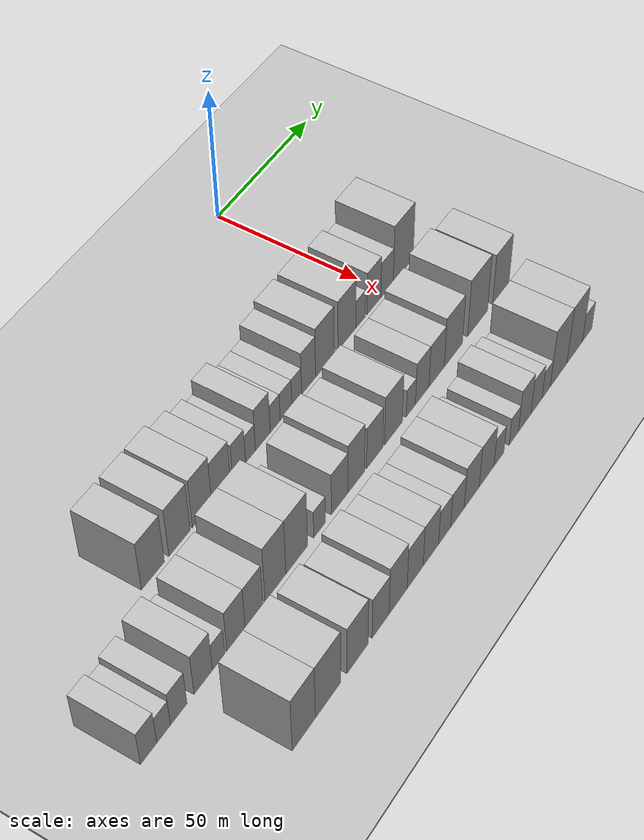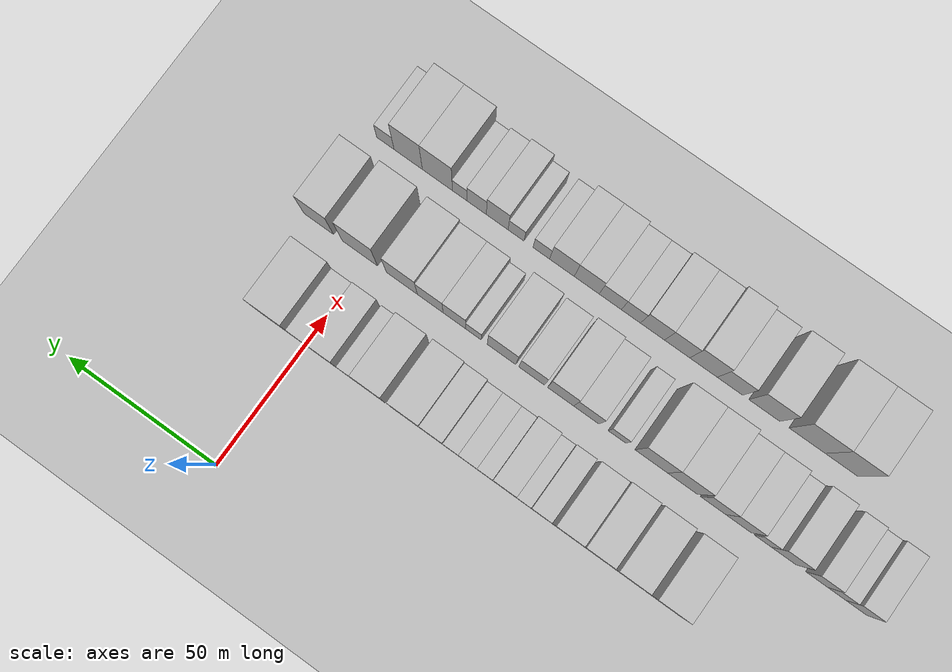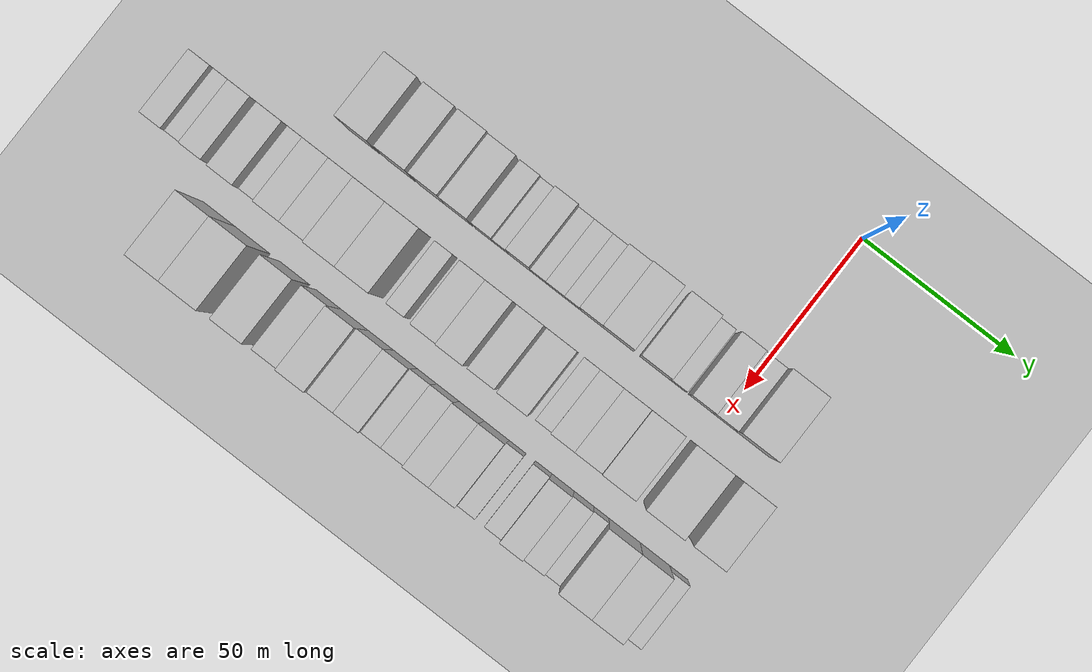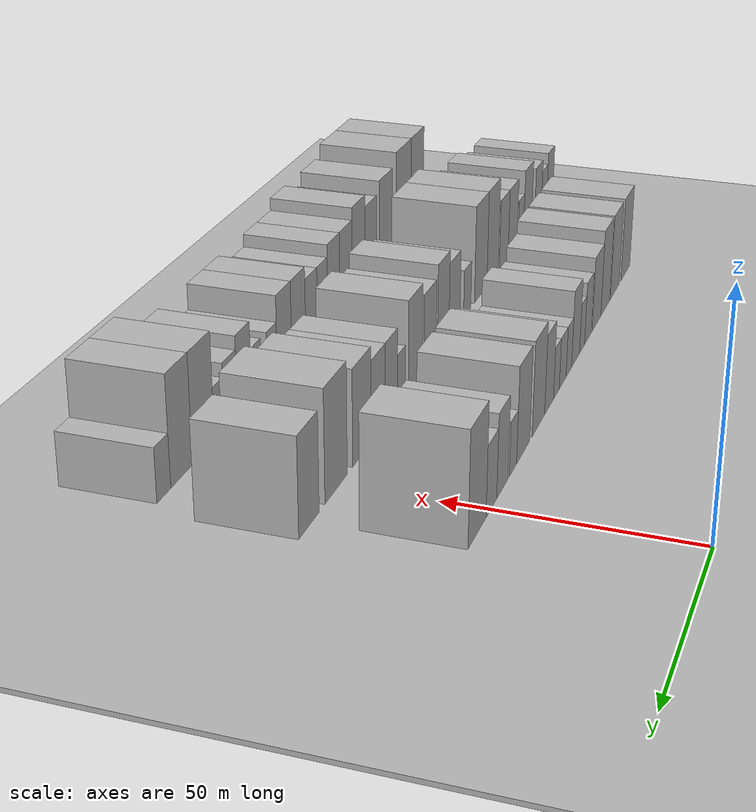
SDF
<sdf version="1.6">
 <world name="default">
  <include><name>ground_plane_1</name><uri>model://HANNAS_ground_plane</uri></include>
  <include>
   <name>ground_plane_2</name>
   <uri>model://HANNAS_ground_plane</uri>
   <pose>100 0 0  0 0 0</pose>
  </include>
  <model name="building_20">
   <static>1</static>
   <pose>50.0000 -117.7029 0 0.000000 0.000000 0.000000</pose>
   <link name="link">
    <pose>0 0 10.50 0 0 0</pose>
    <collision name="collision"><geometry><box><size>20.0000 10.2209 21.0000</size></box></geometry></collision>
    <visual name="visual">
     <cast_shadows>0</cast_shadows>
     <geometry><box><size>20.0000 10.2209 21.0000</size></box></geometry>
     <material>
      <script>
       <uri>model://HANNAS_wall/materials/scripts</uri>
       <uri>model://HANNAS_wall/materials/textures</uri>
       <name>vrc/HANNAS_wall</name>
      </script>
     </material>
    </visual>
   </link>
  </model>
  <model name="building_21">
   <static>1</static>
   <pose>50.0000 -105.7209 0 0.000000 0.000000 0.000000</pose>
   <link name="link">
    <pose>0 0 10.50 0 0 0</pose>
    <collision name="collision"><geometry><box><size>20.0000 9.7430 21.0000</size></box></geometry></collision>
    <visual name="visual">
     <cast_shadows>0</cast_shadows>
     <geometry><box><size>20.0000 9.7430 21.0000</size></box></geometry>
     <material>
      <script>
       <uri>model://HANNAS_wall/materials/scripts</uri>
       <uri>model://HANNAS_wall/materials/textures</uri>
       <name>vrc/HANNAS_wall</name>
      </script>
     </material>
    </visual>
   </link>
  </model>
  <model name="building_22">
   <static>1</static>
   <pose>50.0000 -95.3315 0 0.000000 0.000000 0.000000</pose>
   <link name="link">
    <pose>0 0 10.50 0 0 0</pose>
    <collision name="collision"><geometry><box><size>20.0000 9.0359 21.0000</size></box></geometry></collision>
    <visual name="visual">
     <cast_shadows>0</cast_shadows>
     <geometry><box><size>20.0000 9.0359 21.0000</size></box></geometry>
     <material>
      <script>
       <uri>model://HANNAS_wall/materials/scripts</uri>
       <uri>model://HANNAS_wall/materials/textures</uri>
       <name>vrc/HANNAS_wall</name>
      </script>
     </material>
    </visual>
   </link>
  </model>
  <model name="building_23">
   <static>1</static>
   <pose>50.0000 -86.3866 0 0.000000 0.000000 0.000000</pose>
   <link name="link">
    <pose>0 0 9.00 0 0 0</pose>
    <collision name="collision"><geometry><box><size>20.0000 8.8540 18.0000</size></box></geometry></collision>
    <visual name="visual">
     <cast_shadows>0</cast_shadows>
     <geometry><box><size>20.0000 8.8540 18.0000</size></box></geometry>
     <material>
      <script>
       <uri>model://HANNAS_wall/materials/scripts</uri>
       <uri>model://HANNAS_wall/materials/textures</uri>
       <name>vrc/HANNAS_wall</name>
      </script>
     </material>
    </visual>
   </link>
  </model>
  <model name="building_24">
   <static>1</static>
   <pose>50.0000 -77.7692 0 0.000000 0.000000 0.000000</pose>
   <link name="link">
    <pose>0 0 7.50 0 0 0</pose>
    <collision name="collision"><geometry><box><size>20.0000 6.3808 15.0000</size></box></geometry></collision>
    <visual name="visual">
     <cast_shadows>0</cast_shadows>
     <geometry><box><size>20.0000 6.3808 15.0000</size></box></geometry>
     <material>
      <script>
       <uri>model://HANNAS_wall/materials/scripts</uri>
       <uri>model://HANNAS_wall/materials/textures</uri>
       <name>vrc/HANNAS_wall</name>
      </script>
     </material>
    </visual>
   </link>
  </model>
  <model name="building_25">
   <static>1</static>
   <pose>50.0000 -72.1484 0 0.000000 0.000000 0.000000</pose>
   <link name="link">
    <pose>0 0 6.00 0 0 0</pose>
    <collision name="collision"><geometry><box><size>20.0000 4.8608 12.0000</size></box></geometry></collision>
    <visual name="visual">
     <cast_shadows>0</cast_shadows>
     <geometry><box><size>20.0000 4.8608 12.0000</size></box></geometry>
     <material>
      <script>
       <uri>model://HANNAS_wall/materials/scripts</uri>
       <uri>model://HANNAS_wall/materials/textures</uri>
       <name>vrc/HANNAS_wall</name>
      </script>
     </material>
    </visual>
   </link>
  </model>
  <model name="building_26">
   <static>1</static>
   <pose>50.0000 -66.0389 0 0.000000 0.000000 0.000000</pose>
   <link name="link">
    <pose>0 0 9.00 0 0 0</pose>
    <collision name="collision"><geometry><box><size>20.0000 7.3583 18.0000</size></box></geometry></collision>
    <visual name="visual">
     <cast_shadows>0</cast_shadows>
     <geometry><box><size>20.0000 7.3583 18.0000</size></box></geometry>
     <material>
      <script>
       <uri>model://HANNAS_wall/materials/scripts</uri>
       <uri>model://HANNAS_wall/materials/textures</uri>
       <name>vrc/HANNAS_wall</name>
      </script>
     </material>
    </visual>
   </link>
  </model>
  <model name="building_27">
   <static>1</static>
   <pose>50.0000 -59.8651 0 0.000000 0.000000 0.000000</pose>
   <link name="link">
    <pose>0 0 6.00 0 0 0</pose>
    <collision name="collision"><geometry><box><size>20.0000 4.9893 12.0000</size></box></geometry></collision>
    <visual name="visual">
     <cast_shadows>0</cast_shadows>
     <geometry><box><size>20.0000 4.9893 12.0000</size></box></geometry>
     <material>
      <script>
       <uri>model://HANNAS_wall/materials/scripts</uri>
       <uri>model://HANNAS_wall/materials/textures</uri>
       <name>vrc/HANNAS_wall</name>
      </script>
     </material>
    </visual>
   </link>
  </model>
  <model name="building_28">
   <static>1</static>
   <pose>50.0000 -54.3744 0 0.000000 0.000000 0.000000</pose>
   <link name="link">
    <pose>0 0 6.00 0 0 0</pose>
    <collision name="collision"><geometry><box><size>20.0000 5.9921 12.0000</size></box></geometry></collision>
    <visual name="visual">
     <cast_shadows>0</cast_shadows>
     <geometry><box><size>20.0000 5.9921 12.0000</size></box></geometry>
     <material>
      <script>
       <uri>model://HANNAS_wall/materials/scripts</uri>
       <uri>model://HANNAS_wall/materials/textures</uri>
       <name>vrc/HANNAS_wall</name>
      </script>
     </material>
    </visual>
   </link>
  </model>
  <model name="building_29">
   <static>1</static>
   <pose>50.0000 -48.8814 0 0.000000 0.000000 0.000000</pose>
   <link name="link">
    <pose>0 0 6.00 0 0 0</pose>
    <collision name="collision"><geometry><box><size>20.0000 4.9938 12.0000</size></box></geometry></collision>
    <visual name="visual">
     <cast_shadows>0</cast_shadows>
     <geometry><box><size>20.0000 4.9938 12.0000</size></box></geometry>
     <material>
      <script>
       <uri>model://HANNAS_wall/materials/scripts</uri>
       <uri>model://HANNAS_wall/materials/textures</uri>
       <name>vrc/HANNAS_wall</name>
      </script>
     </material>
    </visual>
   </link>
  </model>
  <model name="building_30">
   <static>1</static>
   <pose>50.0000 -42.7141 0 0.000000 0.000000 0.000000</pose>
   <link name="link">
    <pose>0 0 9.00 0 0 0</pose>
    <collision name="collision"><geometry><box><size>20.0000 7.3408 18.0000</size></box></geometry></collision>
    <visual name="visual">
     <cast_shadows>0</cast_shadows>
     <geometry><box><size>20.0000 7.3408 18.0000</size></box></geometry>
     <material>
      <script>
       <uri>model://HANNAS_wall/materials/scripts</uri>
       <uri>model://HANNAS_wall/materials/textures</uri>
       <name>vrc/HANNAS_wall</name>
      </script>
     </material>
    </visual>
   </link>
  </model>
  <model name="building_31">
   <static>1</static>
   <pose>50.0000 -34.0689 0 0.000000 0.000000 0.000000</pose>
   <link name="link">
    <pose>0 0 10.50 0 0 0</pose>
    <collision name="collision"><geometry><box><size>20.0000 9.9496 21.0000</size></box></geometry></collision>
    <visual name="visual">
     <cast_shadows>0</cast_shadows>
     <geometry><box><size>20.0000 9.9496 21.0000</size></box></geometry>
     <material>
      <script>
       <uri>model://HANNAS_wall/materials/scripts</uri>
       <uri>model://HANNAS_wall/materials/textures</uri>
       <name>vrc/HANNAS_wall</name>
      </script>
     </material>
    </visual>
   </link>
  </model>
  <model name="building_32">
   <static>1</static>
   <pose>50.0000 -22.2317 0 0.000000 0.000000 0.000000</pose>
   <link name="link">
    <pose>0 0 10.50 0 0 0</pose>
    <collision name="collision"><geometry><box><size>20.0000 9.7248 21.0000</size></box></geometry></collision>
    <visual name="visual">
     <cast_shadows>0</cast_shadows>
     <geometry><box><size>20.0000 9.7248 21.0000</size></box></geometry>
     <material>
      <script>
       <uri>model://HANNAS_wall/materials/scripts</uri>
       <uri>model://HANNAS_wall/materials/textures</uri>
       <name>vrc/HANNAS_wall</name>
      </script>
     </material>
    </visual>
   </link>
  </model>
  <model name="building_33">
   <static>1</static>
   <pose>50.0000 -14.7225 0 0.000000 0.000000 0.000000</pose>
   <link name="link">
    <pose>0 0 6.00 0 0 0</pose>
    <collision name="collision"><geometry><box><size>20.0000 5.2937 12.0000</size></box></geometry></collision>
    <visual name="visual">
     <cast_shadows>0</cast_shadows>
     <geometry><box><size>20.0000 5.2937 12.0000</size></box></geometry>
     <material>
      <script>
       <uri>model://HANNAS_wall/materials/scripts</uri>
       <uri>model://HANNAS_wall/materials/textures</uri>
       <name>vrc/HANNAS_wall</name>
      </script>
     </material>
    </visual>
   </link>
  </model>
  <model name="building_34">
   <static>1</static>
   <pose>50.0000 -7.1864 0 0.000000 0.000000 0.000000</pose>
   <link name="link">
    <pose>0 0 9.00 0 0 0</pose>
    <collision name="collision"><geometry><box><size>20.0000 7.7785 18.0000</size></box></geometry></collision>
    <visual name="visual">
     <cast_shadows>0</cast_shadows>
     <geometry><box><size>20.0000 7.7785 18.0000</size></box></geometry>
     <material>
      <script>
       <uri>model://HANNAS_wall/materials/scripts</uri>
       <uri>model://HANNAS_wall/materials/textures</uri>
       <name>vrc/HANNAS_wall</name>
      </script>
     </material>
    </visual>
   </link>
  </model>
  <model name="building_35">
   <static>1</static>
   <pose>50.0000 0.2506 0 0.000000 0.000000 0.000000</pose>
   <link name="link">
    <pose>0 0 7.50 0 0 0</pose>
    <collision name="collision"><geometry><box><size>20.0000 7.0955 15.0000</size></box></geometry></collision>
    <visual name="visual">
     <cast_shadows>0</cast_shadows>
     <geometry><box><size>20.0000 7.0955 15.0000</size></box></geometry>
     <material>
      <script>
       <uri>model://HANNAS_wall/materials/scripts</uri>
       <uri>model://HANNAS_wall/materials/textures</uri>
       <name>vrc/HANNAS_wall</name>
      </script>
     </material>
    </visual>
   </link>
  </model>
  <model name="building_36">
   <static>1</static>
   <pose>50.0000 9.5792 0 0.000000 0.000000 0.000000</pose>
   <link name="link">
    <pose>0 0 12.00 0 0 0</pose>
    <collision name="collision"><geometry><box><size>20.0000 11.5617 24.0000</size></box></geometry></collision>
    <visual name="visual">
     <cast_shadows>0</cast_shadows>
     <geometry><box><size>20.0000 11.5617 24.0000</size></box></geometry>
     <material>
      <script>
       <uri>model://HANNAS_wall/materials/scripts</uri>
       <uri>model://HANNAS_wall/materials/textures</uri>
       <name>vrc/HANNAS_wall</name>
      </script>
     </material>
    </visual>
   </link>
  </model>
  <model name="building_96">
   <static>1</static>
   <pose>79.0000 -159.9873 0 0.000000 0.000000 0.000000</pose>
   <link name="link">
    <pose>0 0 7.50 0 0 0</pose>
    <collision name="collision"><geometry><box><size>20.0000 6.7706 15.0000</size></box></geometry></collision>
    <visual name="visual">
     <cast_shadows>0</cast_shadows>
     <geometry><box><size>20.0000 6.7706 15.0000</size></box></geometry>
     <material>
      <script>
       <uri>model://HANNAS_wall/materials/scripts</uri>
       <uri>model://HANNAS_wall/materials/textures</uri>
       <name>vrc/HANNAS_wall</name>
      </script>
     </material>
    </visual>
   </link>
  </model>
  <model name="building_97">
   <static>1</static>
   <pose>79.0000 -153.7625 0 0.000000 0.000000 0.000000</pose>
   <link name="link">
    <pose>0 0 6.00 0 0 0</pose>
    <collision name="collision"><geometry><box><size>20.0000 5.6791 12.0000</size></box></geometry></collision>
    <visual name="visual">
     <cast_shadows>0</cast_shadows>
     <geometry><box><size>20.0000 5.6791 12.0000</size></box></geometry>
     <material>
      <script>
       <uri>model://HANNAS_wall/materials/scripts</uri>
       <uri>model://HANNAS_wall/materials/textures</uri>
       <name>vrc/HANNAS_wall</name>
      </script>
     </material>
    </visual>
   </link>
  </model>
  <model name="building_98">
   <static>1</static>
   <pose>79.0000 -147.4094 0 0.000000 0.000000 0.000000</pose>
   <link name="link">
    <pose>0 0 7.50 0 0 0</pose>
    <collision name="collision"><geometry><box><size>20.0000 7.0272 15.0000</size></box></geometry></collision>
    <visual name="visual">
     <cast_shadows>0</cast_shadows>
     <geometry><box><size>20.0000 7.0272 15.0000</size></box></geometry>
     <material>
      <script>
       <uri>model://HANNAS_wall/materials/scripts</uri>
       <uri>model://HANNAS_wall/materials/textures</uri>
       <name>vrc/HANNAS_wall</name>
      </script>
     </material>
    </visual>
   </link>
  </model>
  <model name="building_99">
   <static>1</static>
   <pose>79.0000 -136.8767 0 0.000000 0.000000 0.000000</pose>
   <link name="link">
    <pose>0 0 9.00 0 0 0</pose>
    <collision name="collision"><geometry><box><size>20.0000 8.0382 18.0000</size></box></geometry></collision>
    <visual name="visual">
     <cast_shadows>0</cast_shadows>
     <geometry><box><size>20.0000 8.0382 18.0000</size></box></geometry>
     <material>
      <script>
       <uri>model://HANNAS_wall/materials/scripts</uri>
       <uri>model://HANNAS_wall/materials/textures</uri>
       <name>vrc/HANNAS_wall</name>
      </script>
     </material>
    </visual>
   </link>
  </model>
  <model name="building_100">
   <static>1</static>
   <pose>79.0000 -130.1507 0 0.000000 0.000000 0.000000</pose>
   <link name="link">
    <pose>0 0 6.00 0 0 0</pose>
    <collision name="collision"><geometry><box><size>20.0000 5.4139 12.0000</size></box></geometry></collision>
    <visual name="visual">
     <cast_shadows>0</cast_shadows>
     <geometry><box><size>20.0000 5.4139 12.0000</size></box></geometry>
     <material>
      <script>
       <uri>model://HANNAS_wall/materials/scripts</uri>
       <uri>model://HANNAS_wall/materials/textures</uri>
       <name>vrc/HANNAS_wall</name>
      </script>
     </material>
    </visual>
   </link>
  </model>
  <model name="building_101">
   <static>1</static>
   <pose>79.0000 -122.3337 0 0.000000 0.000000 0.000000</pose>
   <link name="link">
    <pose>0 0 9.00 0 0 0</pose>
    <collision name="collision"><geometry><box><size>20.0000 8.2200 18.0000</size></box></geometry></collision>
    <visual name="visual">
     <cast_shadows>0</cast_shadows>
     <geometry><box><size>20.0000 8.2200 18.0000</size></box></geometry>
     <material>
      <script>
       <uri>model://HANNAS_wall/materials/scripts</uri>
       <uri>model://HANNAS_wall/materials/textures</uri>
       <name>vrc/HANNAS_wall</name>
      </script>
     </material>
    </visual>
   </link>
  </model>
  <model name="building_102">
   <static>1</static>
   <pose>79.0000 -114.1577 0 0.000000 0.000000 0.000000</pose>
   <link name="link">
    <pose>0 0 9.00 0 0 0</pose>
    <collision name="collision"><geometry><box><size>20.0000 8.1321 18.0000</size></box></geometry></collision>
    <visual name="visual">
     <cast_shadows>0</cast_shadows>
     <geometry><box><size>20.0000 8.1321 18.0000</size></box></geometry>
     <material>
      <script>
       <uri>model://HANNAS_wall/materials/scripts</uri>
       <uri>model://HANNAS_wall/materials/textures</uri>
       <name>vrc/HANNAS_wall</name>
      </script>
     </material>
    </visual>
   </link>
  </model>
  <model name="building_103">
   <static>1</static>
   <pose>79.0000 -104.1636 0 0.000000 0.000000 0.000000</pose>
   <link name="link">
    <pose>0 0 12.00 0 0 0</pose>
    <collision name="collision"><geometry><box><size>20.0000 9.8561 24.0000</size></box></geometry></collision>
    <visual name="visual">
     <cast_shadows>0</cast_shadows>
     <geometry><box><size>20.0000 9.8561 24.0000</size></box></geometry>
     <material>
      <script>
       <uri>model://HANNAS_wall/materials/scripts</uri>
       <uri>model://HANNAS_wall/materials/textures</uri>
       <name>vrc/HANNAS_wall</name>
      </script>
     </material>
    </visual>
   </link>
  </model>
  <model name="building_104">
   <static>1</static>
   <pose>79.0000 -94.0075 0 0.000000 0.000000 0.000000</pose>
   <link name="link">
    <pose>0 0 12.00 0 0 0</pose>
    <collision name="collision"><geometry><box><size>20.0000 10.4560 24.0000</size></box></geometry></collision>
    <visual name="visual">
     <cast_shadows>0</cast_shadows>
     <geometry><box><size>20.0000 10.4560 24.0000</size></box></geometry>
     <material>
      <script>
       <uri>model://HANNAS_wall/materials/scripts</uri>
       <uri>model://HANNAS_wall/materials/textures</uri>
       <name>vrc/HANNAS_wall</name>
      </script>
     </material>
    </visual>
   </link>
  </model>
  <model name="building_105">
   <static>1</static>
   <pose>79.0000 -82.8937 0 0.000000 0.000000 0.000000</pose>
   <link name="link">
    <pose>0 0 6.00 0 0 0</pose>
    <collision name="collision"><geometry><box><size>20.0000 5.7716 12.0000</size></box></geometry></collision>
    <visual name="visual">
     <cast_shadows>0</cast_shadows>
     <geometry><box><size>20.0000 5.7716 12.0000</size></box></geometry>
     <material>
      <script>
       <uri>model://HANNAS_wall/materials/scripts</uri>
       <uri>model://HANNAS_wall/materials/textures</uri>
       <name>vrc/HANNAS_wall</name>
      </script>
     </material>
    </visual>
   </link>
  </model>
  <model name="building_106">
   <static>1</static>
   <pose>79.0000 -72.8455 0 0.000000 0.000000 0.000000</pose>
   <link name="link">
    <pose>0 0 9.00 0 0 0</pose>
    <collision name="collision"><geometry><box><size>20.0000 8.3248 18.0000</size></box></geometry></collision>
    <visual name="visual">
     <cast_shadows>0</cast_shadows>
     <geometry><box><size>20.0000 8.3248 18.0000</size></box></geometry>
     <material>
      <script>
       <uri>model://HANNAS_wall/materials/scripts</uri>
       <uri>model://HANNAS_wall/materials/textures</uri>
       <name>vrc/HANNAS_wall</name>
      </script>
     </material>
    </visual>
   </link>
  </model>
  <model name="building_107">
   <static>1</static>
   <pose>79.0000 -64.3880 0 0.000000 0.000000 0.000000</pose>
   <link name="link">
    <pose>0 0 10.50 0 0 0</pose>
    <collision name="collision"><geometry><box><size>20.0000 8.5904 21.0000</size></box></geometry></collision>
    <visual name="visual">
     <cast_shadows>0</cast_shadows>
     <geometry><box><size>20.0000 8.5904 21.0000</size></box></geometry>
     <material>
      <script>
       <uri>model://HANNAS_wall/materials/scripts</uri>
       <uri>model://HANNAS_wall/materials/textures</uri>
       <name>vrc/HANNAS_wall</name>
      </script>
     </material>
    </visual>
   </link>
  </model>
  <model name="building_108">
   <static>1</static>
   <pose>79.0000 -54.8262 0 0.000000 0.000000 0.000000</pose>
   <link name="link">
    <pose>0 0 9.00 0 0 0</pose>
    <collision name="collision"><geometry><box><size>20.0000 8.5331 18.0000</size></box></geometry></collision>
    <visual name="visual">
     <cast_shadows>0</cast_shadows>
     <geometry><box><size>20.0000 8.5331 18.0000</size></box></geometry>
     <material>
      <script>
       <uri>model://HANNAS_wall/materials/scripts</uri>
       <uri>model://HANNAS_wall/materials/textures</uri>
       <name>vrc/HANNAS_wall</name>
      </script>
     </material>
    </visual>
   </link>
  </model>
  <model name="building_109">
   <static>1</static>
   <pose>79.0000 -44.7989 0 0.000000 0.000000 0.000000</pose>
   <link name="link">
    <pose>0 0 10.50 0 0 0</pose>
    <collision name="collision"><geometry><box><size>20.0000 9.5216 21.0000</size></box></geometry></collision>
    <visual name="visual">
     <cast_shadows>0</cast_shadows>
     <geometry><box><size>20.0000 9.5216 21.0000</size></box></geometry>
     <material>
      <script>
       <uri>model://HANNAS_wall/materials/scripts</uri>
       <uri>model://HANNAS_wall/materials/textures</uri>
       <name>vrc/HANNAS_wall</name>
      </script>
     </material>
    </visual>
   </link>
  </model>
  <model name="building_110">
   <static>1</static>
   <pose>79.0000 -35.4423 0 0.000000 0.000000 0.000000</pose>
   <link name="link">
    <pose>0 0 6.00 0 0 0</pose>
    <collision name="collision"><geometry><box><size>20.0000 5.1914 12.0000</size></box></geometry></collision>
    <visual name="visual">
     <cast_shadows>0</cast_shadows>
     <geometry><box><size>20.0000 5.1914 12.0000</size></box></geometry>
     <material>
      <script>
       <uri>model://HANNAS_wall/materials/scripts</uri>
       <uri>model://HANNAS_wall/materials/textures</uri>
       <name>vrc/HANNAS_wall</name>
      </script>
     </material>
    </visual>
   </link>
  </model>
  <model name="building_111">
   <static>1</static>
   <pose>79.0000 -29.1045 0 0.000000 0.000000 0.000000</pose>
   <link name="link">
    <pose>0 0 9.00 0 0 0</pose>
    <collision name="collision"><geometry><box><size>20.0000 7.4842 18.0000</size></box></geometry></collision>
    <visual name="visual">
     <cast_shadows>0</cast_shadows>
     <geometry><box><size>20.0000 7.4842 18.0000</size></box></geometry>
     <material>
      <script>
       <uri>model://HANNAS_wall/materials/scripts</uri>
       <uri>model://HANNAS_wall/materials/textures</uri>
       <name>vrc/HANNAS_wall</name>
      </script>
     </material>
    </visual>
   </link>
  </model>
  <model name="building_112">
   <static>1</static>
   <pose>79.0000 -21.0315 0 0.000000 0.000000 0.000000</pose>
   <link name="link">
    <pose>0 0 9.00 0 0 0</pose>
    <collision name="collision"><geometry><box><size>20.0000 8.6617 18.0000</size></box></geometry></collision>
    <visual name="visual">
     <cast_shadows>0</cast_shadows>
     <geometry><box><size>20.0000 8.6617 18.0000</size></box></geometry>
     <material>
      <script>
       <uri>model://HANNAS_wall/materials/scripts</uri>
       <uri>model://HANNAS_wall/materials/textures</uri>
       <name>vrc/HANNAS_wall</name>
      </script>
     </material>
    </visual>
   </link>
  </model>
  <model name="building_113">
   <static>1</static>
   <pose>79.0000 -11.4626 0 0.000000 0.000000 0.000000</pose>
   <link name="link">
    <pose>0 0 10.50 0 0 0</pose>
    <collision name="collision"><geometry><box><size>20.0000 10.4762 21.0000</size></box></geometry></collision>
    <visual name="visual">
     <cast_shadows>0</cast_shadows>
     <geometry><box><size>20.0000 10.4762 21.0000</size></box></geometry>
     <material>
      <script>
       <uri>model://HANNAS_wall/materials/scripts</uri>
       <uri>model://HANNAS_wall/materials/textures</uri>
       <name>vrc/HANNAS_wall</name>
      </script>
     </material>
    </visual>
   </link>
  </model>
  <model name="building_114">
   <static>1</static>
   <pose>79.0000 2.7333 0 0.000000 0.000000 0.000000</pose>
   <link name="link">
    <pose>0 0 12.00 0 0 0</pose>
    <collision name="collision"><geometry><box><size>20.0000 11.9155 24.0000</size></box></geometry></collision>
    <visual name="visual">
     <cast_shadows>0</cast_shadows>
     <geometry><box><size>20.0000 11.9155 24.0000</size></box></geometry>
     <material>
      <script>
       <uri>model://HANNAS_wall/materials/scripts</uri>
       <uri>model://HANNAS_wall/materials/textures</uri>
       <name>vrc/HANNAS_wall</name>
      </script>
     </material>
    </visual>
   </link>
  </model>
  <model name="building_115">
   <static>1</static>
   <pose>79.0000 16.7274 0 0.000000 0.000000 0.000000</pose>
   <link name="link">
    <pose>0 0 10.50 0 0 0</pose>
    <collision name="collision"><geometry><box><size>20.0000 10.0727 21.0000</size></box></geometry></collision>
    <visual name="visual">
     <cast_shadows>0</cast_shadows>
     <geometry><box><size>20.0000 10.0727 21.0000</size></box></geometry>
     <material>
      <script>
       <uri>model://HANNAS_wall/materials/scripts</uri>
       <uri>model://HANNAS_wall/materials/textures</uri>
       <name>vrc/HANNAS_wall</name>
      </script>
     </material>
    </visual>
   </link>
  </model>
  <model name="building_170">
   <static>1</static>
   <pose>108.0000 -135.9802 0 0.000000 0.000000 0.000000</pose>
   <link name="link">
    <pose>0 0 12.00 0 0 0</pose>
    <collision name="collision"><geometry><box><size>20.0000 10.4224 24.0000</size></box></geometry></collision>
    <visual name="visual">
     <cast_shadows>0</cast_shadows>
     <geometry><box><size>20.0000 10.4224 24.0000</size></box></geometry>
     <material>
      <script>
       <uri>model://HANNAS_wall/materials/scripts</uri>
       <uri>model://HANNAS_wall/materials/textures</uri>
       <name>vrc/HANNAS_wall</name>
      </script>
     </material>
    </visual>
   </link>
  </model>
  <model name="building_171">
   <static>1</static>
   <pose>108.0000 -124.9229 0 0.000000 0.000000 0.000000</pose>
   <link name="link">
    <pose>0 0 12.00 0 0 0</pose>
    <collision name="collision"><geometry><box><size>20.0000 11.6921 24.0000</size></box></geometry></collision>
    <visual name="visual">
     <cast_shadows>0</cast_shadows>
     <geometry><box><size>20.0000 11.6921 24.0000</size></box></geometry>
     <material>
      <script>
       <uri>model://HANNAS_wall/materials/scripts</uri>
       <uri>model://HANNAS_wall/materials/textures</uri>
       <name>vrc/HANNAS_wall</name>
      </script>
     </material>
    </visual>
   </link>
  </model>
  <model name="building_172">
   <static>1</static>
   <pose>108.0000 -111.0536 0 0.000000 0.000000 0.000000</pose>
   <link name="link">
    <pose>0 0 10.50 0 0 0</pose>
    <collision name="collision"><geometry><box><size>20.0000 10.0466 21.0000</size></box></geometry></collision>
    <visual name="visual">
     <cast_shadows>0</cast_shadows>
     <geometry><box><size>20.0000 10.0466 21.0000</size></box></geometry>
     <material>
      <script>
       <uri>model://HANNAS_wall/materials/scripts</uri>
       <uri>model://HANNAS_wall/materials/textures</uri>
       <name>vrc/HANNAS_wall</name>
      </script>
     </material>
    </visual>
   </link>
  </model>
  <model name="building_173">
   <static>1</static>
   <pose>108.0000 -99.8712 0 0.000000 0.000000 0.000000</pose>
   <link name="link">
    <pose>0 0 9.00 0 0 0</pose>
    <collision name="collision"><geometry><box><size>20.0000 8.3182 18.0000</size></box></geometry></collision>
    <visual name="visual">
     <cast_shadows>0</cast_shadows>
     <geometry><box><size>20.0000 8.3182 18.0000</size></box></geometry>
     <material>
      <script>
       <uri>model://HANNAS_wall/materials/scripts</uri>
       <uri>model://HANNAS_wall/materials/textures</uri>
       <name>vrc/HANNAS_wall</name>
      </script>
     </material>
    </visual>
   </link>
  </model>
  <model name="building_174">
   <static>1</static>
   <pose>108.0000 -91.2079 0 0.000000 0.000000 0.000000</pose>
   <link name="link">
    <pose>0 0 10.50 0 0 0</pose>
    <collision name="collision"><geometry><box><size>20.0000 9.0084 21.0000</size></box></geometry></collision>
    <visual name="visual">
     <cast_shadows>0</cast_shadows>
     <geometry><box><size>20.0000 9.0084 21.0000</size></box></geometry>
     <material>
      <script>
       <uri>model://HANNAS_wall/materials/scripts</uri>
       <uri>model://HANNAS_wall/materials/textures</uri>
       <name>vrc/HANNAS_wall</name>
      </script>
     </material>
    </visual>
   </link>
  </model>
  <model name="building_175">
   <static>1</static>
   <pose>108.0000 -82.5727 0 0.000000 0.000000 0.000000</pose>
   <link name="link">
    <pose>0 0 9.00 0 0 0</pose>
    <collision name="collision"><geometry><box><size>20.0000 8.2620 18.0000</size></box></geometry></collision>
    <visual name="visual">
     <cast_shadows>0</cast_shadows>
     <geometry><box><size>20.0000 8.2620 18.0000</size></box></geometry>
     <material>
      <script>
       <uri>model://HANNAS_wall/materials/scripts</uri>
       <uri>model://HANNAS_wall/materials/textures</uri>
       <name>vrc/HANNAS_wall</name>
      </script>
     </material>
    </visual>
   </link>
  </model>
  <model name="building_176">
   <static>1</static>
   <pose>108.0000 -74.4552 0 0.000000 0.000000 0.000000</pose>
   <link name="link">
    <pose>0 0 9.00 0 0 0</pose>
    <collision name="collision"><geometry><box><size>20.0000 7.9729 18.0000</size></box></geometry></collision>
    <visual name="visual">
     <cast_shadows>0</cast_shadows>
     <geometry><box><size>20.0000 7.9729 18.0000</size></box></geometry>
     <material>
      <script>
       <uri>model://HANNAS_wall/materials/scripts</uri>
       <uri>model://HANNAS_wall/materials/textures</uri>
       <name>vrc/HANNAS_wall</name>
      </script>
     </material>
    </visual>
   </link>
  </model>
  <model name="building_177">
   <static>1</static>
   <pose>108.0000 -67.2898 0 0.000000 0.000000 0.000000</pose>
   <link name="link">
    <pose>0 0 7.50 0 0 0</pose>
    <collision name="collision"><geometry><box><size>20.0000 6.3580 15.0000</size></box></geometry></collision>
    <visual name="visual">
     <cast_shadows>0</cast_shadows>
     <geometry><box><size>20.0000 6.3580 15.0000</size></box></geometry>
     <material>
      <script>
       <uri>model://HANNAS_wall/materials/scripts</uri>
       <uri>model://HANNAS_wall/materials/textures</uri>
       <name>vrc/HANNAS_wall</name>
      </script>
     </material>
    </visual>
   </link>
  </model>
  <model name="building_178">
   <static>1</static>
   <pose>108.0000 -60.4431 0 0.000000 0.000000 0.000000</pose>
   <link name="link">
    <pose>0 0 7.50 0 0 0</pose>
    <collision name="collision"><geometry><box><size>20.0000 7.3355 15.0000</size></box></geometry></collision>
    <visual name="visual">
     <cast_shadows>0</cast_shadows>
     <geometry><box><size>20.0000 7.3355 15.0000</size></box></geometry>
     <material>
      <script>
       <uri>model://HANNAS_wall/materials/scripts</uri>
       <uri>model://HANNAS_wall/materials/textures</uri>
       <name>vrc/HANNAS_wall</name>
      </script>
     </material>
    </visual>
   </link>
  </model>
  <model name="building_179">
   <static>1</static>
   <pose>108.0000 -52.6331 0 0.000000 0.000000 0.000000</pose>
   <link name="link">
    <pose>0 0 9.00 0 0 0</pose>
    <collision name="collision"><geometry><box><size>20.0000 8.2844 18.0000</size></box></geometry></collision>
    <visual name="visual">
     <cast_shadows>0</cast_shadows>
     <geometry><box><size>20.0000 8.2844 18.0000</size></box></geometry>
     <material>
      <script>
       <uri>model://HANNAS_wall/materials/scripts</uri>
       <uri>model://HANNAS_wall/materials/textures</uri>
       <name>vrc/HANNAS_wall</name>
      </script>
     </material>
    </visual>
   </link>
  </model>
  <model name="building_180">
   <static>1</static>
   <pose>108.0000 -44.3655 0 0.000000 0.000000 0.000000</pose>
   <link name="link">
    <pose>0 0 9.00 0 0 0</pose>
    <collision name="collision"><geometry><box><size>20.0000 8.2508 18.0000</size></box></geometry></collision>
    <visual name="visual">
     <cast_shadows>0</cast_shadows>
     <geometry><box><size>20.0000 8.2508 18.0000</size></box></geometry>
     <material>
      <script>
       <uri>model://HANNAS_wall/materials/scripts</uri>
       <uri>model://HANNAS_wall/materials/textures</uri>
       <name>vrc/HANNAS_wall</name>
      </script>
     </material>
    </visual>
   </link>
  </model>
  <model name="building_181">
   <static>1</static>
   <pose>108.0000 -37.4521 0 0.000000 0.000000 0.000000</pose>
   <link name="link">
    <pose>0 0 6.00 0 0 0</pose>
    <collision name="collision"><geometry><box><size>20.0000 5.5760 12.0000</size></box></geometry></collision>
    <visual name="visual">
     <cast_shadows>0</cast_shadows>
     <geometry><box><size>20.0000 5.5760 12.0000</size></box></geometry>
     <material>
      <script>
       <uri>model://HANNAS_wall/materials/scripts</uri>
       <uri>model://HANNAS_wall/materials/textures</uri>
       <name>vrc/HANNAS_wall</name>
      </script>
     </material>
    </visual>
   </link>
  </model>
  <model name="building_182">
   <static>1</static>
   <pose>108.0000 -28.9753 0 0.000000 0.000000 0.000000</pose>
   <link name="link">
    <pose>0 0 6.00 0 0 0</pose>
    <collision name="collision"><geometry><box><size>20.0000 5.3776 12.0000</size></box></geometry></collision>
    <visual name="visual">
     <cast_shadows>0</cast_shadows>
     <geometry><box><size>20.0000 5.3776 12.0000</size></box></geometry>
     <material>
      <script>
       <uri>model://HANNAS_wall/materials/scripts</uri>
       <uri>model://HANNAS_wall/materials/textures</uri>
       <name>vrc/HANNAS_wall</name>
      </script>
     </material>
    </visual>
   </link>
  </model>
  <model name="building_183">
   <static>1</static>
   <pose>108.0000 -22.6251 0 0.000000 0.000000 0.000000</pose>
   <link name="link">
    <pose>0 0 9.00 0 0 0</pose>
    <collision name="collision"><geometry><box><size>20.0000 7.3228 18.0000</size></box></geometry></collision>
    <visual name="visual">
     <cast_shadows>0</cast_shadows>
     <geometry><box><size>20.0000 7.3228 18.0000</size></box></geometry>
     <material>
      <script>
       <uri>model://HANNAS_wall/materials/scripts</uri>
       <uri>model://HANNAS_wall/materials/textures</uri>
       <name>vrc/HANNAS_wall</name>
      </script>
     </material>
    </visual>
   </link>
  </model>
  <model name="building_184">
   <static>1</static>
   <pose>108.0000 -15.6728 0 0.000000 0.000000 0.000000</pose>
   <link name="link">
    <pose>0 0 7.50 0 0 0</pose>
    <collision name="collision"><geometry><box><size>20.0000 6.5817 15.0000</size></box></geometry></collision>
    <visual name="visual">
     <cast_shadows>0</cast_shadows>
     <geometry><box><size>20.0000 6.5817 15.0000</size></box></geometry>
     <material>
      <script>
       <uri>model://HANNAS_wall/materials/scripts</uri>
       <uri>model://HANNAS_wall/materials/textures</uri>
       <name>vrc/HANNAS_wall</name>
      </script>
     </material>
    </visual>
   </link>
  </model>
  <model name="building_185">
   <static>1</static>
   <pose>108.0000 -9.9448 0 0.000000 0.000000 0.000000</pose>
   <link name="link">
    <pose>0 0 6.00 0 0 0</pose>
    <collision name="collision"><geometry><box><size>20.0000 4.8745 12.0000</size></box></geometry></collision>
    <visual name="visual">
     <cast_shadows>0</cast_shadows>
     <geometry><box><size>20.0000 4.8745 12.0000</size></box></geometry>
     <material>
      <script>
       <uri>model://HANNAS_wall/materials/scripts</uri>
       <uri>model://HANNAS_wall/materials/textures</uri>
       <name>vrc/HANNAS_wall</name>
      </script>
     </material>
    </visual>
   </link>
  </model>
  <model name="building_186">
   <static>1</static>
   <pose>108.0000 -2.3931 0 0.000000 0.000000 0.000000</pose>
   <link name="link">
    <pose>0 0 12.00 0 0 0</pose>
    <collision name="collision"><geometry><box><size>20.0000 10.2288 24.0000</size></box></geometry></collision>
    <visual name="visual">
     <cast_shadows>0</cast_shadows>
     <geometry><box><size>20.0000 10.2288 24.0000</size></box></geometry>
     <material>
      <script>
       <uri>model://HANNAS_wall/materials/scripts</uri>
       <uri>model://HANNAS_wall/materials/textures</uri>
       <name>vrc/HANNAS_wall</name>
      </script>
     </material>
    </visual>
   </link>
  </model>
  <model name="building_187">
   <static>1</static>
   <pose>108.0000 7.5521 0 0.000000 0.000000 0.000000</pose>
   <link name="link">
    <pose>0 0 12.00 0 0 0</pose>
    <collision name="collision"><geometry><box><size>20.0000 9.6616 24.0000</size></box></geometry></collision>
    <visual name="visual">
     <cast_shadows>0</cast_shadows>
     <geometry><box><size>20.0000 9.6616 24.0000</size></box></geometry>
     <material>
      <script>
       <uri>model://HANNAS_wall/materials/scripts</uri>
       <uri>model://HANNAS_wall/materials/textures</uri>
       <name>vrc/HANNAS_wall</name>
      </script>
     </material>
    </visual>
   </link>
  </model>
  <model name="building_188">
   <static>1</static>
   <pose>108.0000 15.3518 0 0.000000 0.000000 0.000000</pose>
   <link name="link">
    <pose>0 0 6.00 0 0 0</pose>
    <collision name="collision"><geometry><box><size>20.0000 5.9379 12.0000</size></box></geometry></collision>
    <visual name="visual">
     <cast_shadows>0</cast_shadows>
     <geometry><box><size>20.0000 5.9379 12.0000</size></box></geometry>
     <material>
      <script>
       <uri>model://HANNAS_wall/materials/scripts</uri>
       <uri>model://HANNAS_wall/materials/textures</uri>
       <name>vrc/HANNAS_wall</name>
      </script>
     </material>
    </visual>
   </link>
  </model>
 </world>
</sdf>
